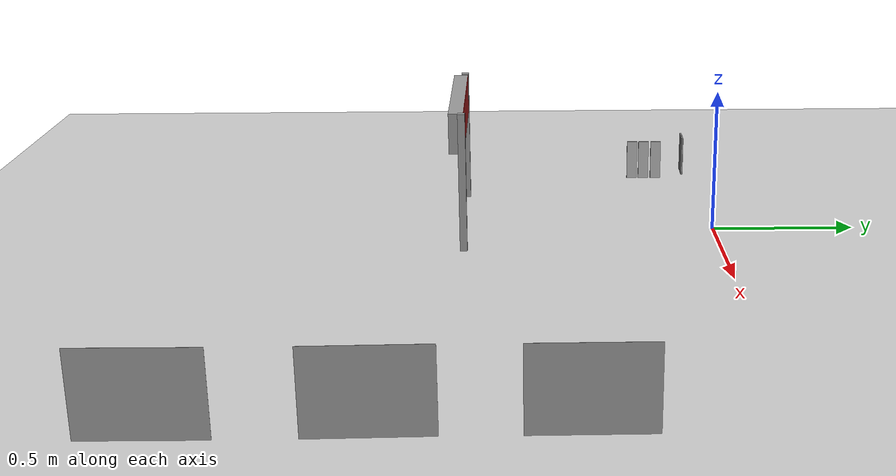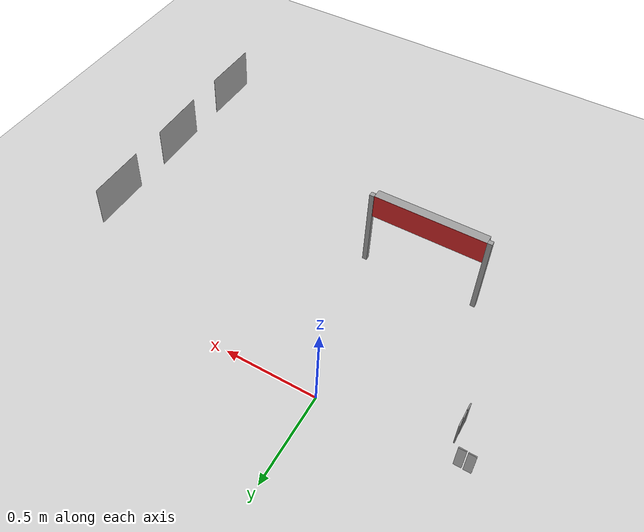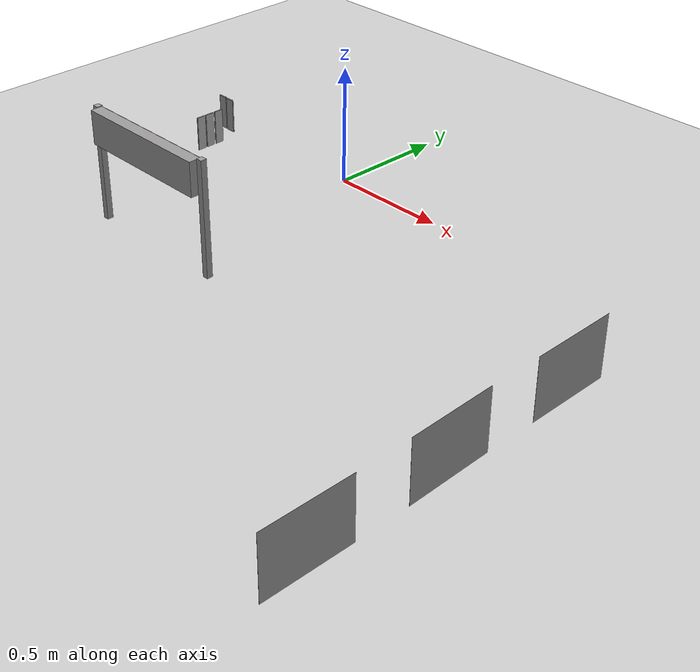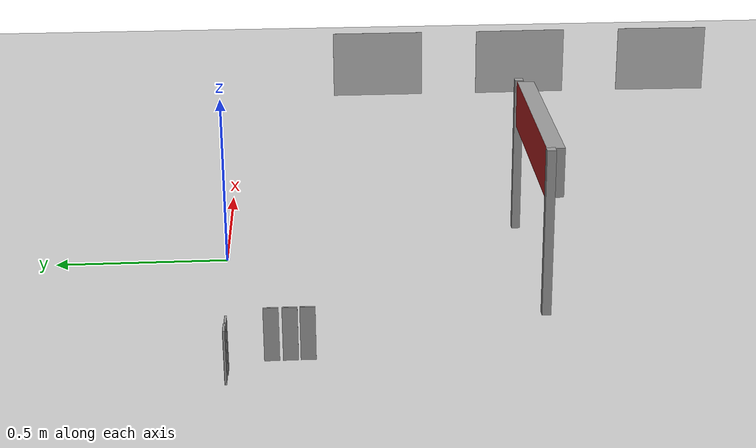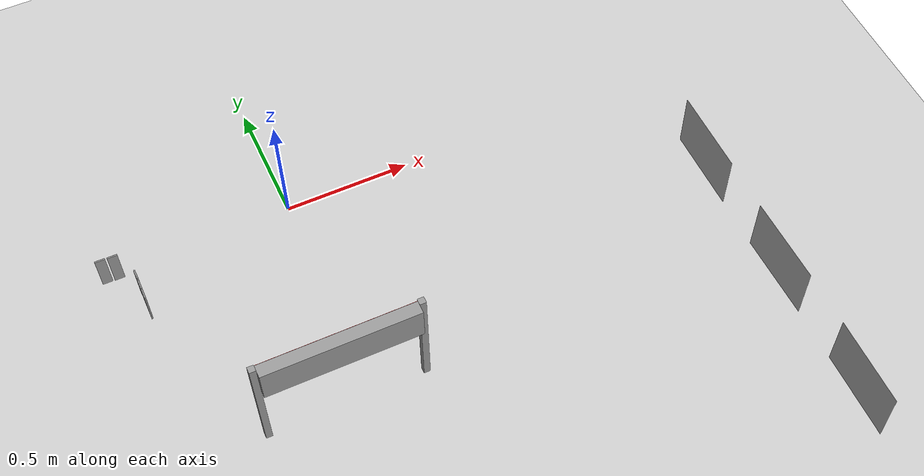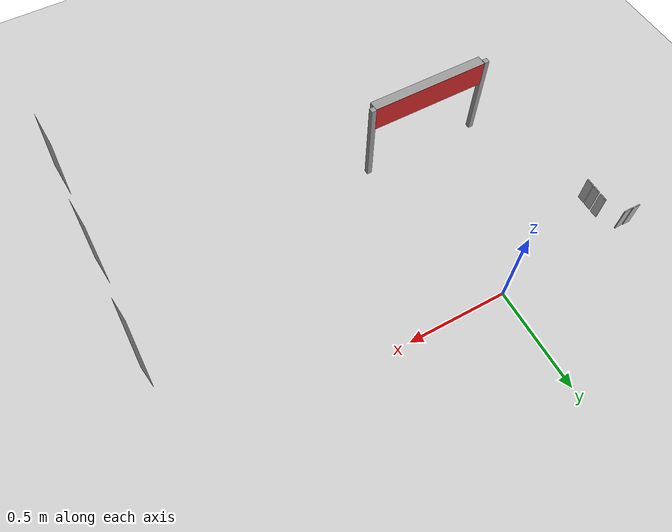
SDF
<sdf version="1.7">
 <world name="default">
  <model name="ground_plane">
   <static>1</static>
   <link name="link">
    <collision name="collision">
     <geometry><plane><normal>0 0 1</normal><size>100 100</size></plane></geometry>
     <surface>
      <contact><collide_bitmask>65535</collide_bitmask></contact>
      <friction><ode><mu>100</mu><mu2>50</mu2></ode></friction>
     </surface>
    </collision>
    <visual name="visual">
     <cast_shadows>0</cast_shadows>
     <geometry><plane><normal>0 0 1</normal><size>4.2 4.2</size></plane></geometry>
     <material><script><uri>file:///home/ros1/桌面/2/png1.material</uri><name>png1</name></script></material>
    </visual>
   </link>
  </model>
  <model name="car1">
   <link name="link_0">
    <inertial>
     <mass>1</mass>
     <inertia>
      <ixx>0.166667</ixx>
      <ixy>0</ixy>
      <ixz>0</ixz>
      <iyy>0.166667</iyy>
      <iyz>0</iyz>
      <izz>0.166667</izz>
     </inertia>
    </inertial>
    <pose>0 -0.000125 -0 0 -0 0</pose>
    <visual name="visual">
     <geometry><box><size>0.345 0.0004 0.25</size></box></geometry>
     <material>
      <lighting>1</lighting>
      <script><uri>file://media/materials/scripts/gazebo.material</uri><name>Gazebo/Grey</name></script>
      <shader type="pixel"><normal_map>__default__</normal_map></shader>
      <ambient>0.3 0.3 0.3 1</ambient>
      <diffuse>0.7 0.7 0.7 1</diffuse>
      <specular>0.01 0.01 0.01 1</specular>
      <emissive>0 0 0 1</emissive>
     </material>
    </visual>
    <collision name="collision">
     <geometry><box><size>0.345 0.0004 0.25</size></box></geometry>
     <surface>
      <friction>
       <ode><mu>1</mu><mu2>1</mu2><fdir1>0 0 0</fdir1><slip1>0</slip1><slip2>0</slip2></ode>
       <torsional>
        <coefficient>1</coefficient>
        <patch_radius>0</patch_radius>
        <surface_radius>0</surface_radius>
        <use_patch_radius>1</use_patch_radius>
        <ode><slip>0</slip></ode>
       </torsional>
      </friction>
      <bounce><restitution_coefficient>0</restitution_coefficient><threshold>1e+06</threshold></bounce>
      <contact>
       <collide_without_contact>0</collide_without_contact>
       <collide_without_contact_bitmask>1</collide_without_contact_bitmask>
       <collide_bitmask>1</collide_bitmask>
       <ode>
        <soft_cfm>0</soft_cfm>
        <soft_erp>0.2</soft_erp>
        <kp>1e+13</kp>
        <kd>1</kd>
        <max_vel>0.01</max_vel>
        <min_depth>0</min_depth>
       </ode>
       <bullet>
        <split_impulse>1</split_impulse>
        <split_impulse_penetration_threshold>-0.01</split_impulse_penetration_threshold>
        <soft_cfm>0</soft_cfm>
        <soft_erp>0.2</soft_erp>
        <kp>1e+13</kp>
        <kd>1</kd>
       </bullet>
      </contact>
     </surface>
    </collision>
   </link>
   <link name="link_1">
    <inertial>
     <mass>1</mass>
     <inertia>
      <ixx>0.166667</ixx>
      <ixy>0</ixy>
      <ixz>0</ixz>
      <iyy>0.166667</iyy>
      <iyz>0</iyz>
      <izz>0.166667</izz>
     </inertia>
    </inertial>
    <pose>0 0.000125 -0 0 -0 0</pose>
    <visual name="visual">
     <geometry><box><size>0.345 0.0001 0.25</size></box></geometry>
     <material>
      <lighting>1</lighting>
      <script><uri>file:///home/ros1/model_editor_models/car1/car1.material</uri><name>car1</name></script>
     </material>
    </visual>
    <collision name="collision">
     <geometry><box><size>0.345 0.0001 0.25</size></box></geometry>
     <surface>
      <friction>
       <ode><mu>1</mu><mu2>1</mu2><fdir1>0 0 0</fdir1><slip1>0</slip1><slip2>0</slip2></ode>
       <torsional>
        <coefficient>1</coefficient>
        <patch_radius>0</patch_radius>
        <surface_radius>0</surface_radius>
        <use_patch_radius>1</use_patch_radius>
        <ode><slip>0</slip></ode>
       </torsional>
      </friction>
      <bounce><restitution_coefficient>0</restitution_coefficient><threshold>1e+06</threshold></bounce>
      <contact>
       <collide_without_contact>0</collide_without_contact>
       <collide_without_contact_bitmask>1</collide_without_contact_bitmask>
       <collide_bitmask>1</collide_bitmask>
       <ode>
        <soft_cfm>0</soft_cfm>
        <soft_erp>0.2</soft_erp>
        <kp>1e+13</kp>
        <kd>1</kd>
        <max_vel>0.01</max_vel>
        <min_depth>0</min_depth>
       </ode>
       <bullet>
        <split_impulse>1</split_impulse>
        <split_impulse_penetration_threshold>-0.01</split_impulse_penetration_threshold>
        <soft_cfm>0</soft_cfm>
        <soft_erp>0.2</soft_erp>
        <kp>1e+13</kp>
        <kd>1</kd>
       </bullet>
      </contact>
     </surface>
    </collision>
   </link>
   <static>0</static>
   <pose>1.56151 -1.63759 0.125 0 -0 1.55632</pose>
  </model>
  <model name="car1_0">
   <link name="link_0">
    <inertial>
     <mass>1</mass>
     <inertia>
      <ixx>0.166667</ixx>
      <ixy>0</ixy>
      <ixz>0</ixz>
      <iyy>0.166667</iyy>
      <iyz>0</iyz>
      <izz>0.166667</izz>
     </inertia>
    </inertial>
    <pose>0 -0.000125 -0 0 -0 0</pose>
    <visual name="visual">
     <geometry><box><size>0.345 0.0004 0.25</size></box></geometry>
     <material>
      <lighting>1</lighting>
      <script><uri>file://media/materials/scripts/gazebo.material</uri><name>Gazebo/Grey</name></script>
      <shader type="pixel"><normal_map>__default__</normal_map></shader>
      <ambient>0.3 0.3 0.3 1</ambient>
      <diffuse>0.7 0.7 0.7 1</diffuse>
      <specular>0.01 0.01 0.01 1</specular>
      <emissive>0 0 0 1</emissive>
     </material>
    </visual>
    <collision name="collision">
     <geometry><box><size>0.345 0.0004 0.25</size></box></geometry>
     <surface>
      <friction>
       <ode><mu>1</mu><mu2>1</mu2><fdir1>0 0 0</fdir1><slip1>0</slip1><slip2>0</slip2></ode>
       <torsional>
        <coefficient>1</coefficient>
        <patch_radius>0</patch_radius>
        <surface_radius>0</surface_radius>
        <use_patch_radius>1</use_patch_radius>
        <ode><slip>0</slip></ode>
       </torsional>
      </friction>
      <bounce><restitution_coefficient>0</restitution_coefficient><threshold>1e+06</threshold></bounce>
      <contact>
       <collide_without_contact>0</collide_without_contact>
       <collide_without_contact_bitmask>1</collide_without_contact_bitmask>
       <collide_bitmask>1</collide_bitmask>
       <ode>
        <soft_cfm>0</soft_cfm>
        <soft_erp>0.2</soft_erp>
        <kp>1e+13</kp>
        <kd>1</kd>
        <max_vel>0.01</max_vel>
        <min_depth>0</min_depth>
       </ode>
       <bullet>
        <split_impulse>1</split_impulse>
        <split_impulse_penetration_threshold>-0.01</split_impulse_penetration_threshold>
        <soft_cfm>0</soft_cfm>
        <soft_erp>0.2</soft_erp>
        <kp>1e+13</kp>
        <kd>1</kd>
       </bullet>
      </contact>
     </surface>
    </collision>
   </link>
   <link name="link_1">
    <inertial>
     <mass>1</mass>
     <inertia>
      <ixx>0.166667</ixx>
      <ixy>0</ixy>
      <ixz>0</ixz>
      <iyy>0.166667</iyy>
      <iyz>0</iyz>
      <izz>0.166667</izz>
     </inertia>
    </inertial>
    <pose>0 0.000125 -0 0 -0 0</pose>
    <visual name="visual">
     <geometry><box><size>0.345 0.0001 0.25</size></box></geometry>
     <material>
      <lighting>1</lighting>
      <script><uri>file:///home/ros1/model_editor_models/car2/car2.material</uri><name>car2</name></script>
     </material>
    </visual>
    <collision name="collision">
     <geometry><box><size>0.345 0.0001 0.25</size></box></geometry>
     <surface>
      <friction>
       <ode><mu>1</mu><mu2>1</mu2><fdir1>0 0 0</fdir1><slip1>0</slip1><slip2>0</slip2></ode>
       <torsional>
        <coefficient>1</coefficient>
        <patch_radius>0</patch_radius>
        <surface_radius>0</surface_radius>
        <use_patch_radius>1</use_patch_radius>
        <ode><slip>0</slip></ode>
       </torsional>
      </friction>
      <bounce><restitution_coefficient>0</restitution_coefficient><threshold>1e+06</threshold></bounce>
      <contact>
       <collide_without_contact>0</collide_without_contact>
       <collide_without_contact_bitmask>1</collide_without_contact_bitmask>
       <collide_bitmask>1</collide_bitmask>
       <ode>
        <soft_cfm>0</soft_cfm>
        <soft_erp>0.2</soft_erp>
        <kp>1e+13</kp>
        <kd>1</kd>
        <max_vel>0.01</max_vel>
        <min_depth>0</min_depth>
       </ode>
       <bullet>
        <split_impulse>1</split_impulse>
        <split_impulse_penetration_threshold>-0.01</split_impulse_penetration_threshold>
        <soft_cfm>0</soft_cfm>
        <soft_erp>0.2</soft_erp>
        <kp>1e+13</kp>
        <kd>1</kd>
       </bullet>
      </contact>
     </surface>
    </collision>
   </link>
   <static>0</static>
   <pose>1.56241 -1.07814 0.125 -3e-06 -0 1.5863</pose>
  </model>
  <model name="car1_1">
   <link name="link_0">
    <inertial>
     <mass>1</mass>
     <inertia>
      <ixx>0.166667</ixx>
      <ixy>0</ixy>
      <ixz>0</ixz>
      <iyy>0.166667</iyy>
      <iyz>0</iyz>
      <izz>0.166667</izz>
     </inertia>
    </inertial>
    <pose>0 -0.000125 -0 0 -0 0</pose>
    <visual name="visual">
     <geometry><box><size>0.345 0.0004 0.25</size></box></geometry>
     <material>
      <lighting>1</lighting>
      <script><uri>file://media/materials/scripts/gazebo.material</uri><name>Gazebo/Grey</name></script>
      <shader type="pixel"><normal_map>__default__</normal_map></shader>
      <ambient>0.3 0.3 0.3 1</ambient>
      <diffuse>0.7 0.7 0.7 1</diffuse>
      <specular>0.01 0.01 0.01 1</specular>
      <emissive>0 0 0 1</emissive>
     </material>
    </visual>
    <collision name="collision">
     <geometry><box><size>0.345 0.0004 0.25</size></box></geometry>
     <surface>
      <friction>
       <ode><mu>1</mu><mu2>1</mu2><fdir1>0 0 0</fdir1><slip1>0</slip1><slip2>0</slip2></ode>
       <torsional>
        <coefficient>1</coefficient>
        <patch_radius>0</patch_radius>
        <surface_radius>0</surface_radius>
        <use_patch_radius>1</use_patch_radius>
        <ode><slip>0</slip></ode>
       </torsional>
      </friction>
      <bounce><restitution_coefficient>0</restitution_coefficient><threshold>1e+06</threshold></bounce>
      <contact>
       <collide_without_contact>0</collide_without_contact>
       <collide_without_contact_bitmask>1</collide_without_contact_bitmask>
       <collide_bitmask>1</collide_bitmask>
       <ode>
        <soft_cfm>0</soft_cfm>
        <soft_erp>0.2</soft_erp>
        <kp>1e+13</kp>
        <kd>1</kd>
        <max_vel>0.01</max_vel>
        <min_depth>0</min_depth>
       </ode>
       <bullet>
        <split_impulse>1</split_impulse>
        <split_impulse_penetration_threshold>-0.01</split_impulse_penetration_threshold>
        <soft_cfm>0</soft_cfm>
        <soft_erp>0.2</soft_erp>
        <kp>1e+13</kp>
        <kd>1</kd>
       </bullet>
      </contact>
     </surface>
    </collision>
   </link>
   <link name="link_1">
    <inertial>
     <mass>1</mass>
     <inertia>
      <ixx>0.166667</ixx>
      <ixy>0</ixy>
      <ixz>0</ixz>
      <iyy>0.166667</iyy>
      <iyz>0</iyz>
      <izz>0.166667</izz>
     </inertia>
    </inertial>
    <pose>0 0.000125 -0 0 -0 0</pose>
    <visual name="visual">
     <geometry><box><size>0.345 0.0001 0.25</size></box></geometry>
     <material>
      <lighting>1</lighting>
      <script><uri>file:///home/ros1/model_editor_models/car3/car3.material</uri><name>car3</name></script>
     </material>
    </visual>
    <collision name="collision">
     <geometry><box><size>0.345 0.0001 0.25</size></box></geometry>
     <surface>
      <friction>
       <ode><mu>1</mu><mu2>1</mu2><fdir1>0 0 0</fdir1><slip1>0</slip1><slip2>0</slip2></ode>
       <torsional>
        <coefficient>1</coefficient>
        <patch_radius>0</patch_radius>
        <surface_radius>0</surface_radius>
        <use_patch_radius>1</use_patch_radius>
        <ode><slip>0</slip></ode>
       </torsional>
      </friction>
      <bounce><restitution_coefficient>0</restitution_coefficient><threshold>1e+06</threshold></bounce>
      <contact>
       <collide_without_contact>0</collide_without_contact>
       <collide_without_contact_bitmask>1</collide_without_contact_bitmask>
       <collide_bitmask>1</collide_bitmask>
       <ode>
        <soft_cfm>0</soft_cfm>
        <soft_erp>0.2</soft_erp>
        <kp>1e+13</kp>
        <kd>1</kd>
        <max_vel>0.01</max_vel>
        <min_depth>0</min_depth>
       </ode>
       <bullet>
        <split_impulse>1</split_impulse>
        <split_impulse_penetration_threshold>-0.01</split_impulse_penetration_threshold>
        <soft_cfm>0</soft_cfm>
        <soft_erp>0.2</soft_erp>
        <kp>1e+13</kp>
        <kd>1</kd>
       </bullet>
      </contact>
     </surface>
    </collision>
   </link>
   <static>0</static>
   <pose>1.56249 -0.521606 0.124999 0 -4e-06 1.5704</pose>
  </model>
  <model name="man-8">
   <link name="link_0">
    <inertial>
     <mass>1</mass>
     <inertia>
      <ixx>0.166667</ixx>
      <ixy>0</ixy>
      <ixz>0</ixz>
      <iyy>0.166667</iyy>
      <iyz>0</iyz>
      <izz>0.166667</izz>
     </inertia>
    </inertial>
    <pose>0 -0.0015 -0 0 -0 0</pose>
    <visual name="visual">
     <geometry><box><size>0.04 0.005 0.15</size></box></geometry>
     <material>
      <lighting>1</lighting>
      <script><uri>file://media/materials/scripts/gazebo.material</uri><name>Gazebo/Grey</name></script>
      <shader type="pixel"><normal_map>__default__</normal_map></shader>
      <ambient>0.3 0.3 0.3 1</ambient>
      <diffuse>0.7 0.7 0.7 1</diffuse>
      <specular>0.01 0.01 0.01 1</specular>
      <emissive>0 0 0 1</emissive>
     </material>
    </visual>
    <collision name="collision">
     <geometry><box><size>0.04 0.005 0.15</size></box></geometry>
     <surface>
      <friction>
       <ode><mu>1</mu><mu2>1</mu2><fdir1>0 0 0</fdir1><slip1>0</slip1><slip2>0</slip2></ode>
       <torsional>
        <coefficient>1</coefficient>
        <patch_radius>0</patch_radius>
        <surface_radius>0</surface_radius>
        <use_patch_radius>1</use_patch_radius>
        <ode><slip>0</slip></ode>
       </torsional>
      </friction>
      <bounce><restitution_coefficient>0</restitution_coefficient><threshold>1e+06</threshold></bounce>
      <contact>
       <collide_without_contact>0</collide_without_contact>
       <collide_without_contact_bitmask>1</collide_without_contact_bitmask>
       <collide_bitmask>1</collide_bitmask>
       <ode>
        <soft_cfm>0</soft_cfm>
        <soft_erp>0.2</soft_erp>
        <kp>1e+13</kp>
        <kd>1</kd>
        <max_vel>0.01</max_vel>
        <min_depth>0</min_depth>
       </ode>
       <bullet>
        <split_impulse>1</split_impulse>
        <split_impulse_penetration_threshold>-0.01</split_impulse_penetration_threshold>
        <soft_cfm>0</soft_cfm>
        <soft_erp>0.2</soft_erp>
        <kp>1e+13</kp>
        <kd>1</kd>
       </bullet>
      </contact>
     </surface>
    </collision>
   </link>
   <link name="link_4">
    <inertial>
     <mass>1</mass>
     <inertia>
      <ixx>0.166667</ixx>
      <ixy>0</ixy>
      <ixz>0</ixz>
      <iyy>0.166667</iyy>
      <iyz>0</iyz>
      <izz>0.166667</izz>
     </inertia>
    </inertial>
    <pose>0 0.0015 -0 0 -0 0</pose>
    <visual name="visual">
     <geometry><box><size>0.04 0.001 0.15</size></box></geometry>
     <material>
      <script><uri>file:///home/ros1/model_editor_models/man-8/man_8.material</uri><name>man_8</name></script>
     </material>
    </visual>
    <collision name="collision">
     <geometry><box><size>0.04 0.001 0.15</size></box></geometry>
     <surface>
      <friction>
       <ode><mu>1</mu><mu2>1</mu2><fdir1>0 0 0</fdir1><slip1>0</slip1><slip2>0</slip2></ode>
       <torsional>
        <coefficient>1</coefficient>
        <patch_radius>0</patch_radius>
        <surface_radius>0</surface_radius>
        <use_patch_radius>1</use_patch_radius>
        <ode><slip>0</slip></ode>
       </torsional>
      </friction>
      <bounce><restitution_coefficient>0</restitution_coefficient><threshold>1e+06</threshold></bounce>
      <contact>
       <collide_without_contact>0</collide_without_contact>
       <collide_without_contact_bitmask>1</collide_without_contact_bitmask>
       <collide_bitmask>1</collide_bitmask>
       <ode>
        <soft_cfm>0</soft_cfm>
        <soft_erp>0.2</soft_erp>
        <kp>1e+13</kp>
        <kd>1</kd>
        <max_vel>0.01</max_vel>
        <min_depth>0</min_depth>
       </ode>
       <bullet>
        <split_impulse>1</split_impulse>
        <split_impulse_penetration_threshold>-0.01</split_impulse_penetration_threshold>
        <soft_cfm>0</soft_cfm>
        <soft_erp>0.2</soft_erp>
        <kp>1e+13</kp>
        <kd>1</kd>
       </bullet>
      </contact>
     </surface>
    </collision>
   </link>
   <static>0</static>
   <pose>-0.742893 -0.02823 0.075002 8e-06 8.7e-05 0.000148</pose>
  </model>
  <model name="man-9">
   <link name="link_0">
    <inertial>
     <mass>1</mass>
     <inertia>
      <ixx>0.166667</ixx>
      <ixy>0</ixy>
      <ixz>0</ixz>
      <iyy>0.166667</iyy>
      <iyz>0</iyz>
      <izz>0.166667</izz>
     </inertia>
    </inertial>
    <pose>0 -0.0015 -0 0 -0 0</pose>
    <visual name="visual">
     <geometry><box><size>0.04 0.005 0.15</size></box></geometry>
     <material>
      <lighting>1</lighting>
      <script><uri>file://media/materials/scripts/gazebo.material</uri><name>Gazebo/Grey</name></script>
      <shader type="pixel"><normal_map>__default__</normal_map></shader>
      <ambient>0.3 0.3 0.3 1</ambient>
      <diffuse>0.7 0.7 0.7 1</diffuse>
      <specular>0.01 0.01 0.01 1</specular>
      <emissive>0 0 0 1</emissive>
     </material>
    </visual>
    <collision name="collision">
     <geometry><box><size>0.04 0.005 0.15</size></box></geometry>
     <surface>
      <friction>
       <ode><mu>1</mu><mu2>1</mu2><fdir1>0 0 0</fdir1><slip1>0</slip1><slip2>0</slip2></ode>
       <torsional>
        <coefficient>1</coefficient>
        <patch_radius>0</patch_radius>
        <surface_radius>0</surface_radius>
        <use_patch_radius>1</use_patch_radius>
        <ode><slip>0</slip></ode>
       </torsional>
      </friction>
      <bounce><restitution_coefficient>0</restitution_coefficient><threshold>1e+06</threshold></bounce>
      <contact>
       <collide_without_contact>0</collide_without_contact>
       <collide_without_contact_bitmask>1</collide_without_contact_bitmask>
       <collide_bitmask>1</collide_bitmask>
       <ode>
        <soft_cfm>0</soft_cfm>
        <soft_erp>0.2</soft_erp>
        <kp>1e+13</kp>
        <kd>1</kd>
        <max_vel>0.01</max_vel>
        <min_depth>0</min_depth>
       </ode>
       <bullet>
        <split_impulse>1</split_impulse>
        <split_impulse_penetration_threshold>-0.01</split_impulse_penetration_threshold>
        <soft_cfm>0</soft_cfm>
        <soft_erp>0.2</soft_erp>
        <kp>1e+13</kp>
        <kd>1</kd>
       </bullet>
      </contact>
     </surface>
    </collision>
   </link>
   <link name="link_4">
    <inertial>
     <mass>1</mass>
     <inertia>
      <ixx>0.166667</ixx>
      <ixy>0</ixy>
      <ixz>0</ixz>
      <iyy>0.166667</iyy>
      <iyz>0</iyz>
      <izz>0.166667</izz>
     </inertia>
    </inertial>
    <pose>0 0.0015 -0 0 -0 0</pose>
    <visual name="visual">
     <geometry><box><size>0.04 0.001 0.15</size></box></geometry>
     <material>
      <script><uri>file:///home/ros1/model_editor_models/man-9/man_9.material</uri><name>man_9</name></script>
     </material>
    </visual>
    <collision name="collision">
     <geometry><box><size>0.04 0.001 0.15</size></box></geometry>
     <surface>
      <friction>
       <ode><mu>1</mu><mu2>1</mu2><fdir1>0 0 0</fdir1><slip1>0</slip1><slip2>0</slip2></ode>
       <torsional>
        <coefficient>1</coefficient>
        <patch_radius>0</patch_radius>
        <surface_radius>0</surface_radius>
        <use_patch_radius>1</use_patch_radius>
        <ode><slip>0</slip></ode>
       </torsional>
      </friction>
      <bounce><restitution_coefficient>0</restitution_coefficient><threshold>1e+06</threshold></bounce>
      <contact>
       <collide_without_contact>0</collide_without_contact>
       <collide_without_contact_bitmask>1</collide_without_contact_bitmask>
       <collide_bitmask>1</collide_bitmask>
       <ode>
        <soft_cfm>0</soft_cfm>
        <soft_erp>0.2</soft_erp>
        <kp>1e+13</kp>
        <kd>1</kd>
        <max_vel>0.01</max_vel>
        <min_depth>0</min_depth>
       </ode>
       <bullet>
        <split_impulse>1</split_impulse>
        <split_impulse_penetration_threshold>-0.01</split_impulse_penetration_threshold>
        <soft_cfm>0</soft_cfm>
        <soft_erp>0.2</soft_erp>
        <kp>1e+13</kp>
        <kd>1</kd>
       </bullet>
      </contact>
     </surface>
    </collision>
   </link>
   <static>0</static>
   <pose>-0.69575 -0.029877 0.075 -2e-06 -1.1e-05 -9.8e-05</pose>
  </model>
  <model name="man-11">
   <link name="link_0">
    <inertial>
     <mass>1</mass>
     <inertia>
      <ixx>0.166667</ixx>
      <ixy>0</ixy>
      <ixz>0</ixz>
      <iyy>0.166667</iyy>
      <iyz>0</iyz>
      <izz>0.166667</izz>
     </inertia>
    </inertial>
    <pose>0 -0.0015 -0 0 -0 0</pose>
    <visual name="visual">
     <geometry><box><size>0.04 0.005 0.15</size></box></geometry>
     <material>
      <lighting>1</lighting>
      <script><uri>file://media/materials/scripts/gazebo.material</uri><name>Gazebo/Grey</name></script>
      <shader type="pixel"><normal_map>__default__</normal_map></shader>
      <ambient>0.3 0.3 0.3 1</ambient>
      <diffuse>0.7 0.7 0.7 1</diffuse>
      <specular>0.01 0.01 0.01 1</specular>
      <emissive>0 0 0 1</emissive>
     </material>
    </visual>
    <collision name="collision">
     <geometry><box><size>0.04 0.005 0.15</size></box></geometry>
     <surface>
      <friction>
       <ode><mu>1</mu><mu2>1</mu2><fdir1>0 0 0</fdir1><slip1>0</slip1><slip2>0</slip2></ode>
       <torsional>
        <coefficient>1</coefficient>
        <patch_radius>0</patch_radius>
        <surface_radius>0</surface_radius>
        <use_patch_radius>1</use_patch_radius>
        <ode><slip>0</slip></ode>
       </torsional>
      </friction>
      <bounce><restitution_coefficient>0</restitution_coefficient><threshold>1e+06</threshold></bounce>
      <contact>
       <collide_without_contact>0</collide_without_contact>
       <collide_without_contact_bitmask>1</collide_without_contact_bitmask>
       <collide_bitmask>1</collide_bitmask>
       <ode>
        <soft_cfm>0</soft_cfm>
        <soft_erp>0.2</soft_erp>
        <kp>1e+13</kp>
        <kd>1</kd>
        <max_vel>0.01</max_vel>
        <min_depth>0</min_depth>
       </ode>
       <bullet>
        <split_impulse>1</split_impulse>
        <split_impulse_penetration_threshold>-0.01</split_impulse_penetration_threshold>
        <soft_cfm>0</soft_cfm>
        <soft_erp>0.2</soft_erp>
        <kp>1e+13</kp>
        <kd>1</kd>
       </bullet>
      </contact>
     </surface>
    </collision>
   </link>
   <link name="link_4">
    <inertial>
     <mass>1</mass>
     <inertia>
      <ixx>0.166667</ixx>
      <ixy>0</ixy>
      <ixz>0</ixz>
      <iyy>0.166667</iyy>
      <iyz>0</iyz>
      <izz>0.166667</izz>
     </inertia>
    </inertial>
    <pose>0 0.0015 -0 0 -0 0</pose>
    <visual name="visual">
     <geometry><box><size>0.04 0.001 0.15</size></box></geometry>
     <material>
      <script><uri>file:///home/ros1/model_editor_models/man-11/man_11.material</uri><name>man_11</name></script>
     </material>
    </visual>
    <collision name="collision">
     <geometry><box><size>0.04 0.001 0.15</size></box></geometry>
     <surface>
      <friction>
       <ode><mu>1</mu><mu2>1</mu2><fdir1>0 0 0</fdir1><slip1>0</slip1><slip2>0</slip2></ode>
       <torsional>
        <coefficient>1</coefficient>
        <patch_radius>0</patch_radius>
        <surface_radius>0</surface_radius>
        <use_patch_radius>1</use_patch_radius>
        <ode><slip>0</slip></ode>
       </torsional>
      </friction>
      <bounce><restitution_coefficient>0</restitution_coefficient><threshold>1e+06</threshold></bounce>
      <contact>
       <collide_without_contact>0</collide_without_contact>
       <collide_without_contact_bitmask>1</collide_without_contact_bitmask>
       <collide_bitmask>1</collide_bitmask>
       <ode>
        <soft_cfm>0</soft_cfm>
        <soft_erp>0.2</soft_erp>
        <kp>1e+13</kp>
        <kd>1</kd>
        <max_vel>0.01</max_vel>
        <min_depth>0</min_depth>
       </ode>
       <bullet>
        <split_impulse>1</split_impulse>
        <split_impulse_penetration_threshold>-0.01</split_impulse_penetration_threshold>
        <soft_cfm>0</soft_cfm>
        <soft_erp>0.2</soft_erp>
        <kp>1e+13</kp>
        <kd>1</kd>
       </bullet>
      </contact>
     </surface>
    </collision>
   </link>
   <static>0</static>
   <pose>-0.638544 -0.236856 0.075 8e-06 1.2e-05 -1.57499</pose>
  </model>
  <model name="man-12">
   <link name="link_0">
    <inertial>
     <mass>1</mass>
     <inertia>
      <ixx>0.166667</ixx>
      <ixy>0</ixy>
      <ixz>0</ixz>
      <iyy>0.166667</iyy>
      <iyz>0</iyz>
      <izz>0.166667</izz>
     </inertia>
    </inertial>
    <pose>0 -0.0015 -0 0 -0 0</pose>
    <visual name="visual">
     <geometry><box><size>0.04 0.005 0.15</size></box></geometry>
     <material>
      <lighting>1</lighting>
      <script><uri>file://media/materials/scripts/gazebo.material</uri><name>Gazebo/Grey</name></script>
      <shader type="pixel"><normal_map>__default__</normal_map></shader>
      <ambient>0.3 0.3 0.3 1</ambient>
      <diffuse>0.7 0.7 0.7 1</diffuse>
      <specular>0.01 0.01 0.01 1</specular>
      <emissive>0 0 0 1</emissive>
     </material>
    </visual>
    <collision name="collision">
     <geometry><box><size>0.04 0.005 0.15</size></box></geometry>
     <surface>
      <friction>
       <ode><mu>1</mu><mu2>1</mu2><fdir1>0 0 0</fdir1><slip1>0</slip1><slip2>0</slip2></ode>
       <torsional>
        <coefficient>1</coefficient>
        <patch_radius>0</patch_radius>
        <surface_radius>0</surface_radius>
        <use_patch_radius>1</use_patch_radius>
        <ode><slip>0</slip></ode>
       </torsional>
      </friction>
      <bounce><restitution_coefficient>0</restitution_coefficient><threshold>1e+06</threshold></bounce>
      <contact>
       <collide_without_contact>0</collide_without_contact>
       <collide_without_contact_bitmask>1</collide_without_contact_bitmask>
       <collide_bitmask>1</collide_bitmask>
       <ode>
        <soft_cfm>0</soft_cfm>
        <soft_erp>0.2</soft_erp>
        <kp>1e+13</kp>
        <kd>1</kd>
        <max_vel>0.01</max_vel>
        <min_depth>0</min_depth>
       </ode>
       <bullet>
        <split_impulse>1</split_impulse>
        <split_impulse_penetration_threshold>-0.01</split_impulse_penetration_threshold>
        <soft_cfm>0</soft_cfm>
        <soft_erp>0.2</soft_erp>
        <kp>1e+13</kp>
        <kd>1</kd>
       </bullet>
      </contact>
     </surface>
    </collision>
   </link>
   <link name="link_4">
    <inertial>
     <mass>1</mass>
     <inertia>
      <ixx>0.166667</ixx>
      <ixy>0</ixy>
      <ixz>0</ixz>
      <iyy>0.166667</iyy>
      <iyz>0</iyz>
      <izz>0.166667</izz>
     </inertia>
    </inertial>
    <pose>0 0.0015 -0 0 -0 0</pose>
    <visual name="visual">
     <geometry><box><size>0.04 0.001 0.15</size></box></geometry>
     <material>
      <script><uri>file:///home/ros1/model_editor_models/man-12/man_12.material</uri><name>man_12</name></script>
     </material>
    </visual>
    <collision name="collision">
     <geometry><box><size>0.04 0.001 0.15</size></box></geometry>
     <surface>
      <friction>
       <ode><mu>1</mu><mu2>1</mu2><fdir1>0 0 0</fdir1><slip1>0</slip1><slip2>0</slip2></ode>
       <torsional>
        <coefficient>1</coefficient>
        <patch_radius>0</patch_radius>
        <surface_radius>0</surface_radius>
        <use_patch_radius>1</use_patch_radius>
        <ode><slip>0</slip></ode>
       </torsional>
      </friction>
      <bounce><restitution_coefficient>0</restitution_coefficient><threshold>1e+06</threshold></bounce>
      <contact>
       <collide_without_contact>0</collide_without_contact>
       <collide_without_contact_bitmask>1</collide_without_contact_bitmask>
       <collide_bitmask>1</collide_bitmask>
       <ode>
        <soft_cfm>0</soft_cfm>
        <soft_erp>0.2</soft_erp>
        <kp>1e+13</kp>
        <kd>1</kd>
        <max_vel>0.01</max_vel>
        <min_depth>0</min_depth>
       </ode>
       <bullet>
        <split_impulse>1</split_impulse>
        <split_impulse_penetration_threshold>-0.01</split_impulse_penetration_threshold>
        <soft_cfm>0</soft_cfm>
        <soft_erp>0.2</soft_erp>
        <kp>1e+13</kp>
        <kd>1</kd>
       </bullet>
      </contact>
     </surface>
    </collision>
   </link>
   <static>0</static>
   <pose>-0.638505 -0.19138 0.075 1.2e-05 -2e-06 -1.57166</pose>
  </model>
  <model name="man-13">
   <link name="link_0">
    <inertial>
     <mass>1</mass>
     <inertia>
      <ixx>0.166667</ixx>
      <ixy>0</ixy>
      <ixz>0</ixz>
      <iyy>0.166667</iyy>
      <iyz>0</iyz>
      <izz>0.166667</izz>
     </inertia>
    </inertial>
    <pose>0 -0.0015 -0 0 -0 0</pose>
    <visual name="visual">
     <geometry><box><size>0.04 0.005 0.15</size></box></geometry>
     <material>
      <lighting>1</lighting>
      <script><uri>file://media/materials/scripts/gazebo.material</uri><name>Gazebo/Grey</name></script>
      <shader type="pixel"><normal_map>__default__</normal_map></shader>
      <ambient>0.3 0.3 0.3 1</ambient>
      <diffuse>0.7 0.7 0.7 1</diffuse>
      <specular>0.01 0.01 0.01 1</specular>
      <emissive>0 0 0 1</emissive>
     </material>
    </visual>
    <collision name="collision">
     <geometry><box><size>0.04 0.005 0.15</size></box></geometry>
     <surface>
      <friction>
       <ode><mu>1</mu><mu2>1</mu2><fdir1>0 0 0</fdir1><slip1>0</slip1><slip2>0</slip2></ode>
       <torsional>
        <coefficient>1</coefficient>
        <patch_radius>0</patch_radius>
        <surface_radius>0</surface_radius>
        <use_patch_radius>1</use_patch_radius>
        <ode><slip>0</slip></ode>
       </torsional>
      </friction>
      <bounce><restitution_coefficient>0</restitution_coefficient><threshold>1e+06</threshold></bounce>
      <contact>
       <collide_without_contact>0</collide_without_contact>
       <collide_without_contact_bitmask>1</collide_without_contact_bitmask>
       <collide_bitmask>1</collide_bitmask>
       <ode>
        <soft_cfm>0</soft_cfm>
        <soft_erp>0.2</soft_erp>
        <kp>1e+13</kp>
        <kd>1</kd>
        <max_vel>0.01</max_vel>
        <min_depth>0</min_depth>
       </ode>
       <bullet>
        <split_impulse>1</split_impulse>
        <split_impulse_penetration_threshold>-0.01</split_impulse_penetration_threshold>
        <soft_cfm>0</soft_cfm>
        <soft_erp>0.2</soft_erp>
        <kp>1e+13</kp>
        <kd>1</kd>
       </bullet>
      </contact>
     </surface>
    </collision>
   </link>
   <link name="link_4">
    <inertial>
     <mass>1</mass>
     <inertia>
      <ixx>0.166667</ixx>
      <ixy>0</ixy>
      <ixz>0</ixz>
      <iyy>0.166667</iyy>
      <iyz>0</iyz>
      <izz>0.166667</izz>
     </inertia>
    </inertial>
    <pose>0 0.0015 -0 0 -0 0</pose>
    <visual name="visual">
     <geometry><box><size>0.04 0.001 0.15</size></box></geometry>
     <material>
      <script><uri>file:///home/ros1/model_editor_models/man-13/man_13.material</uri><name>man_13</name></script>
     </material>
    </visual>
    <collision name="collision">
     <geometry><box><size>0.04 0.001 0.15</size></box></geometry>
     <surface>
      <friction>
       <ode><mu>1</mu><mu2>1</mu2><fdir1>0 0 0</fdir1><slip1>0</slip1><slip2>0</slip2></ode>
       <torsional>
        <coefficient>1</coefficient>
        <patch_radius>0</patch_radius>
        <surface_radius>0</surface_radius>
        <use_patch_radius>1</use_patch_radius>
        <ode><slip>0</slip></ode>
       </torsional>
      </friction>
      <bounce><restitution_coefficient>0</restitution_coefficient><threshold>1e+06</threshold></bounce>
      <contact>
       <collide_without_contact>0</collide_without_contact>
       <collide_without_contact_bitmask>1</collide_without_contact_bitmask>
       <collide_bitmask>1</collide_bitmask>
       <ode>
        <soft_cfm>0</soft_cfm>
        <soft_erp>0.2</soft_erp>
        <kp>1e+13</kp>
        <kd>1</kd>
        <max_vel>0.01</max_vel>
        <min_depth>0</min_depth>
       </ode>
       <bullet>
        <split_impulse>1</split_impulse>
        <split_impulse_penetration_threshold>-0.01</split_impulse_penetration_threshold>
        <soft_cfm>0</soft_cfm>
        <soft_erp>0.2</soft_erp>
        <kp>1e+13</kp>
        <kd>1</kd>
       </bullet>
      </contact>
     </surface>
    </collision>
   </link>
   <static>0</static>
   <pose>-0.638284 -0.142862 0.075 1.1e-05 -5e-06 -1.54361</pose>
  </model>
  <model name="leg_1">
   <link name="link_0">
    <inertial>
     <mass>1</mass>
     <inertia>
      <ixx>0.166667</ixx>
      <ixy>0</ixy>
      <ixz>0</ixz>
      <iyy>0.166667</iyy>
      <iyz>0</iyz>
      <izz>0.166667</izz>
     </inertia>
    </inertial>
    <visual name="visual">
     <geometry><box><size>0.025 0.025 0.48</size></box></geometry>
     <material>
      <lighting>1</lighting>
      <script><uri>file://media/materials/scripts/gazebo.material</uri><name>Gazebo/Grey</name></script>
      <shader type="pixel"><normal_map>__default__</normal_map></shader>
      <ambient>0.3 0.3 0.3 1</ambient>
      <diffuse>0.7 0.7 0.7 1</diffuse>
      <specular>0.01 0.01 0.01 1</specular>
      <emissive>0 0 0 1</emissive>
     </material>
    </visual>
    <collision name="collision">
     <geometry><box><size>0.025 0.025 0.48</size></box></geometry>
     <surface>
      <friction>
       <ode><mu>1</mu><mu2>1</mu2><fdir1>0 0 0</fdir1><slip1>0</slip1><slip2>0</slip2></ode>
       <torsional>
        <coefficient>1</coefficient>
        <patch_radius>0</patch_radius>
        <surface_radius>0</surface_radius>
        <use_patch_radius>1</use_patch_radius>
        <ode><slip>0</slip></ode>
       </torsional>
      </friction>
      <bounce><restitution_coefficient>0</restitution_coefficient><threshold>1e+06</threshold></bounce>
      <contact>
       <collide_without_contact>0</collide_without_contact>
       <collide_without_contact_bitmask>1</collide_without_contact_bitmask>
       <collide_bitmask>1</collide_bitmask>
       <ode>
        <soft_cfm>0</soft_cfm>
        <soft_erp>0.2</soft_erp>
        <kp>1e+13</kp>
        <kd>1</kd>
        <max_vel>0.01</max_vel>
        <min_depth>0</min_depth>
       </ode>
       <bullet>
        <split_impulse>1</split_impulse>
        <split_impulse_penetration_threshold>-0.01</split_impulse_penetration_threshold>
        <soft_cfm>0</soft_cfm>
        <soft_erp>0.2</soft_erp>
        <kp>1e+13</kp>
        <kd>1</kd>
       </bullet>
      </contact>
     </surface>
    </collision>
   </link>
   <static>0</static>
   <pose>-0.415358 -0.888387 0.24 1e-06 1e-06 -3.8e-05</pose>
  </model>
  <model name="leg_2">
   <link name="link_0">
    <inertial>
     <mass>1</mass>
     <inertia>
      <ixx>0.166667</ixx>
      <ixy>0</ixy>
      <ixz>0</ixz>
      <iyy>0.166667</iyy>
      <iyz>0</iyz>
      <izz>0.166667</izz>
     </inertia>
    </inertial>
    <visual name="visual">
     <geometry><box><size>0.025 0.025 0.48</size></box></geometry>
     <material>
      <lighting>1</lighting>
      <script><uri>file://media/materials/scripts/gazebo.material</uri><name>Gazebo/Grey</name></script>
      <shader type="pixel"><normal_map>__default__</normal_map></shader>
      <ambient>0.3 0.3 0.3 1</ambient>
      <diffuse>0.7 0.7 0.7 1</diffuse>
      <specular>0.01 0.01 0.01 1</specular>
      <emissive>0 0 0 1</emissive>
     </material>
    </visual>
    <collision name="collision">
     <geometry><box><size>0.025 0.025 0.48</size></box></geometry>
     <surface>
      <friction>
       <ode><mu>1</mu><mu2>1</mu2><fdir1>0 0 0</fdir1><slip1>0</slip1><slip2>0</slip2></ode>
       <torsional>
        <coefficient>1</coefficient>
        <patch_radius>0</patch_radius>
        <surface_radius>0</surface_radius>
        <use_patch_radius>1</use_patch_radius>
        <ode><slip>0</slip></ode>
       </torsional>
      </friction>
      <bounce><restitution_coefficient>0</restitution_coefficient><threshold>1e+06</threshold></bounce>
      <contact>
       <collide_without_contact>0</collide_without_contact>
       <collide_without_contact_bitmask>1</collide_without_contact_bitmask>
       <collide_bitmask>1</collide_bitmask>
       <ode>
        <soft_cfm>0</soft_cfm>
        <soft_erp>0.2</soft_erp>
        <kp>1e+13</kp>
        <kd>1</kd>
        <max_vel>0.01</max_vel>
        <min_depth>0</min_depth>
       </ode>
       <bullet>
        <split_impulse>1</split_impulse>
        <split_impulse_penetration_threshold>-0.01</split_impulse_penetration_threshold>
        <soft_cfm>0</soft_cfm>
        <soft_erp>0.2</soft_erp>
        <kp>1e+13</kp>
        <kd>1</kd>
       </bullet>
      </contact>
     </surface>
    </collision>
   </link>
   <static>0</static>
   <pose>0.199663 -0.884427 0.24 2.6e-05 -1e-06 -1.5e-05</pose>
  </model>
  <model name="ryg3_0">
   <link name="link_0">
    <inertial>
     <mass>1</mass>
     <inertia>
      <ixx>0.166667</ixx>
      <ixy>0</ixy>
      <ixz>0</ixz>
      <iyy>0.166667</iyy>
      <iyz>0</iyz>
      <izz>0.166667</izz>
     </inertia>
    </inertial>
    <pose>0 0 0.0725 0 -0 0</pose>
    <visual name="visual">
     <geometry><box><size>0.59 0.05 0.14</size></box></geometry>
     <material>
      <lighting>1</lighting>
      <script><uri>file://media/materials/scripts/gazebo.material</uri><name>Gazebo/Grey</name></script>
      <shader type="pixel"><normal_map>__default__</normal_map></shader>
      <ambient>0.3 0.3 0.3 1</ambient>
      <diffuse>0.7 0.7 0.7 1</diffuse>
      <specular>0.01 0.01 0.01 1</specular>
      <emissive>0 0 0 1</emissive>
     </material>
    </visual>
    <collision name="collision">
     <geometry><box><size>0.59 0.05 0.14</size></box></geometry>
     <surface>
      <friction>
       <ode><mu>1</mu><mu2>1</mu2><fdir1>0 0 0</fdir1><slip1>0</slip1><slip2>0</slip2></ode>
       <torsional>
        <coefficient>1</coefficient>
        <patch_radius>0</patch_radius>
        <surface_radius>0</surface_radius>
        <use_patch_radius>1</use_patch_radius>
        <ode><slip>0</slip></ode>
       </torsional>
      </friction>
      <bounce><restitution_coefficient>0</restitution_coefficient><threshold>1e+06</threshold></bounce>
      <contact>
       <collide_without_contact>0</collide_without_contact>
       <collide_without_contact_bitmask>1</collide_without_contact_bitmask>
       <collide_bitmask>1</collide_bitmask>
       <ode>
        <soft_cfm>0</soft_cfm>
        <soft_erp>0.2</soft_erp>
        <kp>1e+13</kp>
        <kd>1</kd>
        <max_vel>0.01</max_vel>
        <min_depth>0</min_depth>
       </ode>
       <bullet>
        <split_impulse>1</split_impulse>
        <split_impulse_penetration_threshold>-0.01</split_impulse_penetration_threshold>
        <soft_cfm>0</soft_cfm>
        <soft_erp>0.2</soft_erp>
        <kp>1e+13</kp>
        <kd>1</kd>
       </bullet>
      </contact>
     </surface>
    </collision>
   </link>
   <link name="link_1">
    <inertial>
     <mass>1</mass>
     <inertia>
      <ixx>0.166667</ixx>
      <ixy>0</ixy>
      <ixz>0</ixz>
      <iyy>0.166667</iyy>
      <iyz>0</iyz>
      <izz>0.166667</izz>
     </inertia>
    </inertial>
    <pose>0 0.0255 0.0725 0 -0 0</pose>
    <visual name="visual">
     <geometry><box><size>0.59 0.001 0.14</size></box></geometry>
     <material>
      <lighting>1</lighting>
      <script>
       <uri>file:///home/ros1/ce/src/ceshi3/models/traffic_light_sync/traffic_light.material</uri>
       <name>Ceshi3Traffic/Red</name>
      </script>
     </material>
    </visual>
    <collision name="collision">
     <geometry><box><size>0.59 0.001 0.14</size></box></geometry>
     <surface>
      <friction>
       <ode><mu>1</mu><mu2>1</mu2><fdir1>0 0 0</fdir1><slip1>0</slip1><slip2>0</slip2></ode>
       <torsional>
        <coefficient>1</coefficient>
        <patch_radius>0</patch_radius>
        <surface_radius>0</surface_radius>
        <use_patch_radius>1</use_patch_radius>
        <ode><slip>0</slip></ode>
       </torsional>
      </friction>
      <bounce><restitution_coefficient>0</restitution_coefficient><threshold>1e+06</threshold></bounce>
      <contact>
       <collide_without_contact>0</collide_without_contact>
       <collide_without_contact_bitmask>1</collide_without_contact_bitmask>
       <collide_bitmask>1</collide_bitmask>
       <ode>
        <soft_cfm>0</soft_cfm>
        <soft_erp>0.2</soft_erp>
        <kp>1e+13</kp>
        <kd>1</kd>
        <max_vel>0.01</max_vel>
        <min_depth>0</min_depth>
       </ode>
       <bullet>
        <split_impulse>1</split_impulse>
        <split_impulse_penetration_threshold>-0.01</split_impulse_penetration_threshold>
        <soft_cfm>0</soft_cfm>
        <soft_erp>0.2</soft_erp>
        <kp>1e+13</kp>
        <kd>1</kd>
       </bullet>
      </contact>
     </surface>
    </collision>
   </link>
   <static>1</static>
   <pose>-0.107847 -0.903466 0.334289 0 -0 0</pose>
  </model>
 </world>
</sdf>
